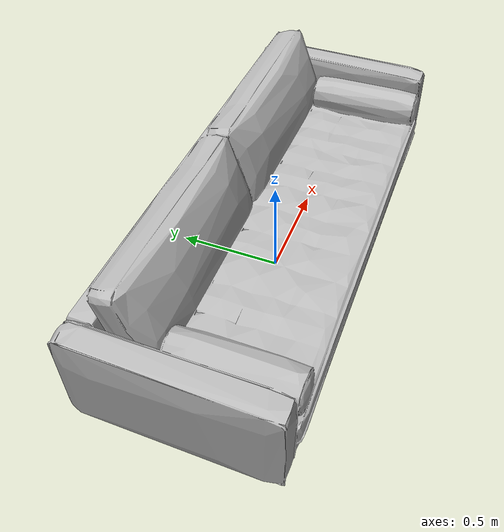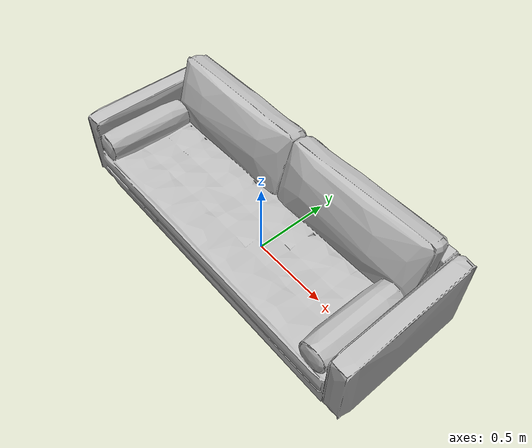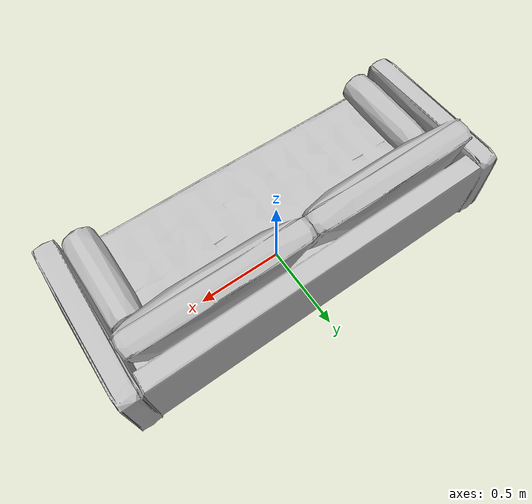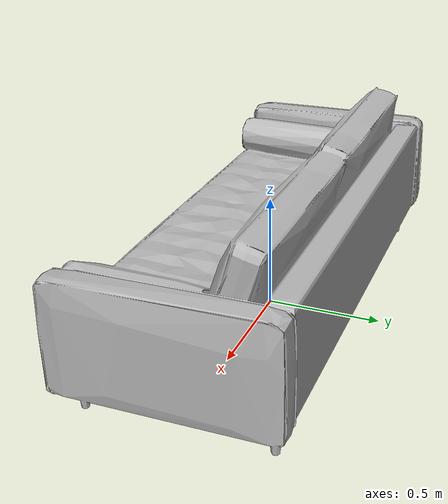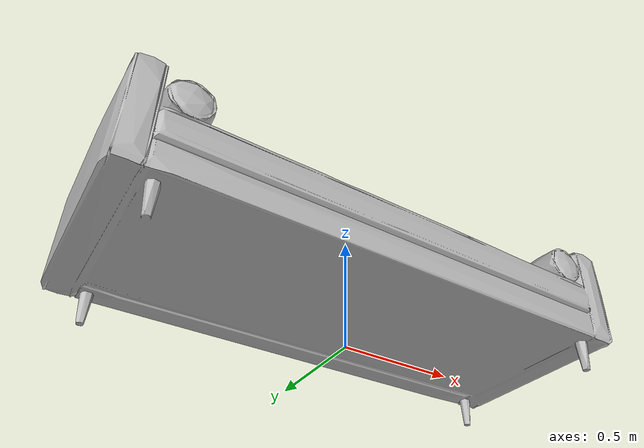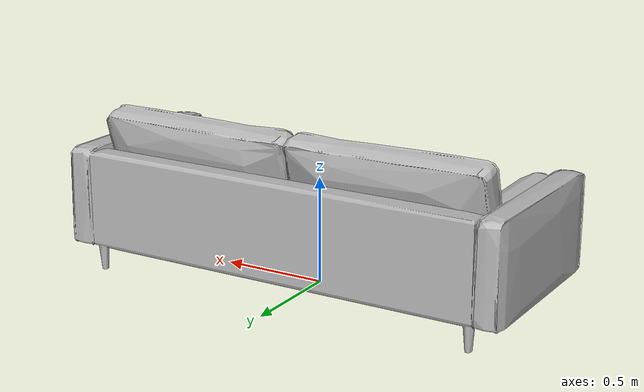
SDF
<sdf version="1.6">
	<model name="Sofas_Oa1bfa586a8f8_lod0">
		<link name="main_link">
			<visual name="visual_RootNode">
				<geometry>
					<mesh>
						<uri>model://Sofas_Oa1bfa586a8f8_lod0/meshes/visual_RootNode.dae</uri>
					</mesh>
				</geometry>
			</visual>
			<collision name="collision_RootNode_lod0_0">
				<geometry>
					<mesh>
						<uri>model://Sofas_Oa1bfa586a8f8_lod0/meshes/collision_RootNode_lod0_0.dae</uri>
					</mesh>
				</geometry>
			</collision>
		</link>
	</model>
</sdf>
